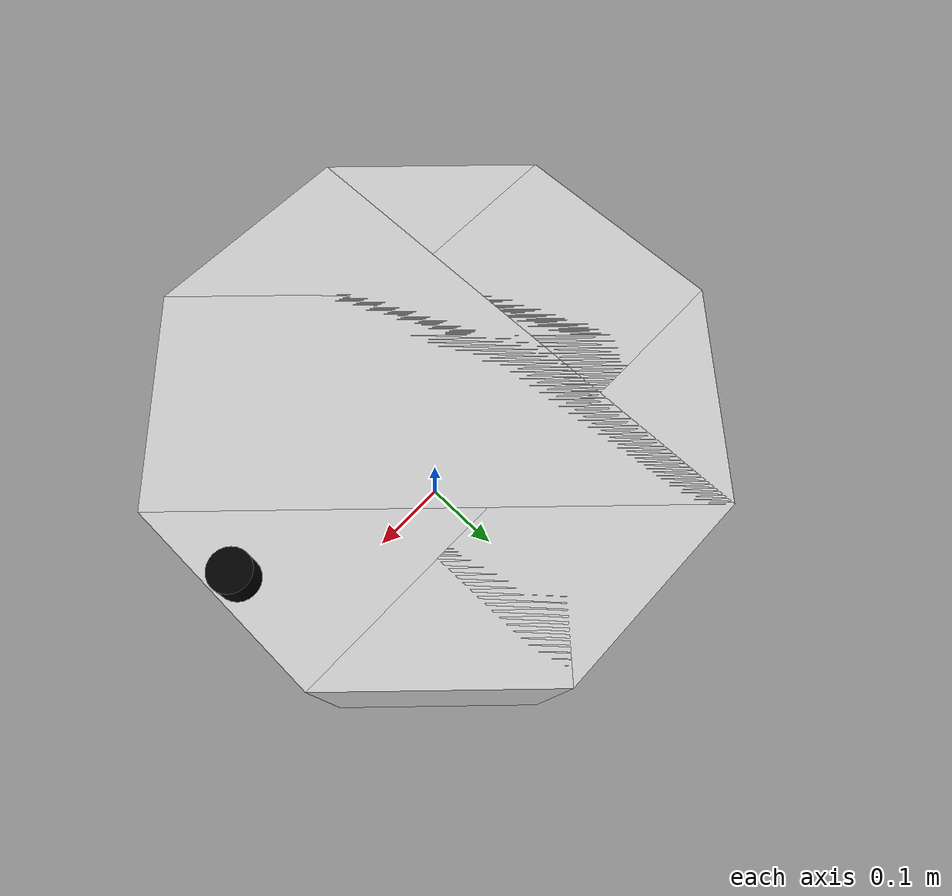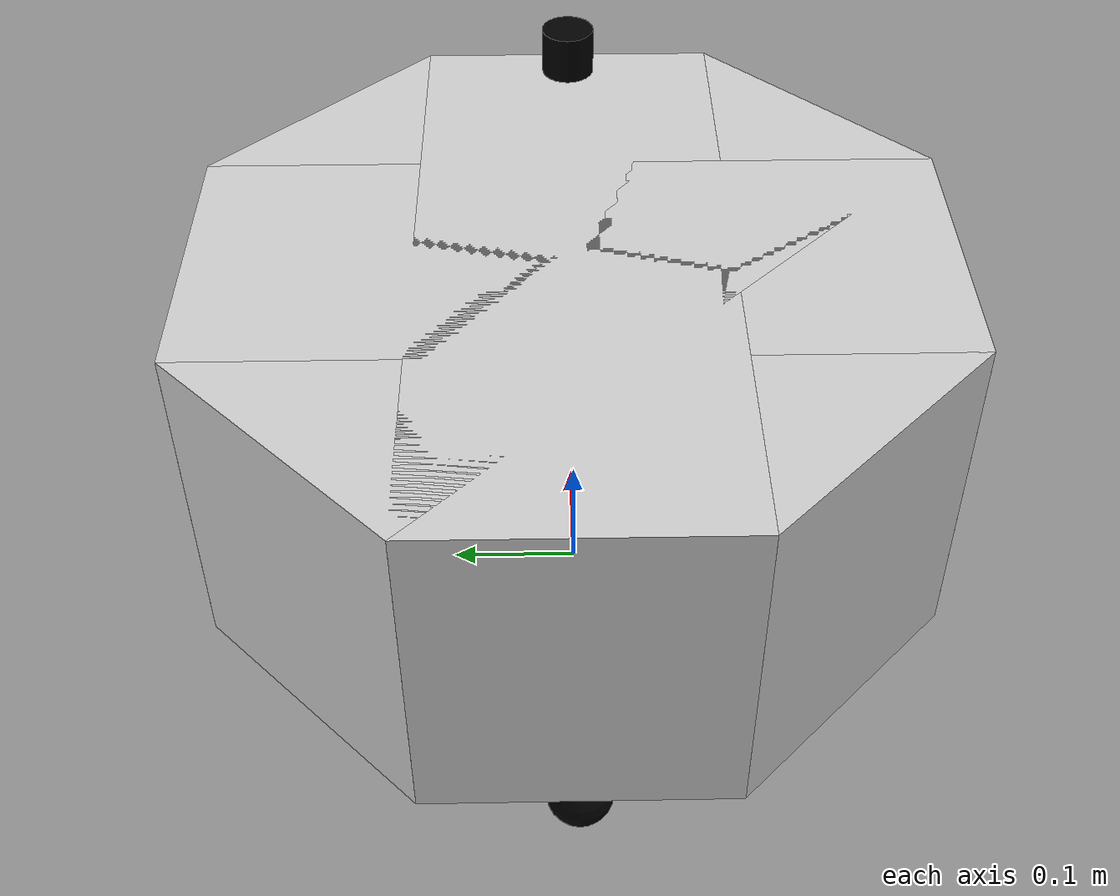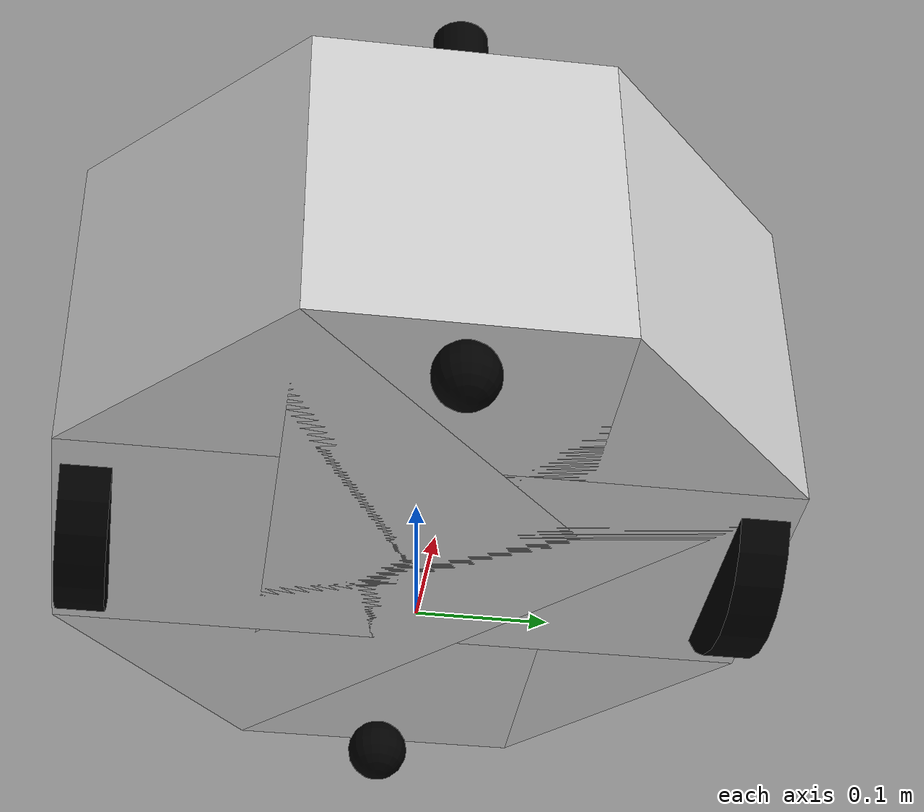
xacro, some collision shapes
<?xml version="1.0"?>
<robot name="charmie" xmlns:xacro="http://www.ros.org/wiki/xacro">

    <xacro:include filename="common_properties.xacro"/>
    <xacro:include filename="inertial_macros.xacro"/>
    <xacro:include filename="mobile_base.xacro"/>
    <xacro:include filename="mobile_base_gazebo.xacro"/>
    <xacro:include filename="lidar.xacro"/>

</robot>

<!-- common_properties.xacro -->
<robot xmlns:xacro="http://www.ros.org/wiki/xacro">

    <material name ="orange">
        <color rgba="1 0.3 0.1 1" />
    </material>

    <material name ="black">
        <color rgba="0 0 0 1" />
    </material>

    <material name ="light_grey">
        <color rgba="0.8 0.8 0.8 1" />
    </material>

    <material name ="grey">
        <color rgba="0.6 0.6 0.6 1" />
    </material>

    <material name ="dark_grey">
        <color rgba="0.25 0.25 0.25 1" />
    </material>

</robot>

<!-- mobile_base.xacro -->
<robot xmlns:xacro="http://www.ros.org/wiki/xacro">

    <xacro:property name="base_octagon_side" value="0.232" />
    <xacro:property name="base_length" value="0.56" />
    <xacro:property name="base_height" value="0.27" />

    <xacro:property name="base_floor_height" value="0.05" />

    <xacro:property name="wheel_radius" value="0.1" />
    <xacro:property name="wheel_length" value="0.038" />
    <xacro:property name="wheel_shift_from_base_length" value="0.025" />

    <!-- BASE LINK -->

    <link name="base_link">

        <visual>
            <geometry>
                <box size="${base_length} ${base_octagon_side} ${base_height}" />
            </geometry>
            <origin xyz="0 0 ${base_height/2}" rpy="0 0 0" />
            <material name="light_grey"/>
        </visual>
        <collision>
            <geometry>
                <box size="${base_length} ${base_octagon_side} ${base_height}" />
            </geometry>
            <origin xyz="0 0 ${base_height/2}" rpy="0 0 0" />
        </collision>
        <xacro:inertial_box mass="5.0" x="${base_length}" y="${base_octagon_side}" z="${base_height}" >
            <origin xyz="0 0 ${base_height/2}" rpy="0 0 0" />
        </xacro:inertial_box>

        <visual>
            <geometry>
                <box size="${base_length} ${base_octagon_side} ${base_height}" />
            </geometry>
            <origin xyz="0 0 ${base_height/2}" rpy="0 0 ${pi/2}" />
            <material name="light_grey"/>
        </visual>
        <collision>
            <geometry>
                <box size="${base_length} ${base_octagon_side} ${base_height}" />
            </geometry>
            <origin xyz="0 0 ${base_height/2}" rpy="0 0 ${pi/2}" />
        </collision>
        <xacro:inertial_box mass="5.0" x="${base_length}" y="${base_octagon_side}" z="${base_height}" >
            <origin xyz="0 0 ${base_height/2}" rpy="0 0 ${pi/2}" />
        </xacro:inertial_box>

        <visual>
            <geometry>
                <box size="${base_length} ${base_octagon_side} ${base_height}" />
            </geometry>
            <origin xyz="0 0 ${base_height/2}" rpy="0 0 ${pi/4}" />
            <material name="light_grey"/>
        </visual>
        <collision>
            <geometry>
                <box size="${base_length} ${base_octagon_side} ${base_height}" />
            </geometry>
            <origin xyz="0 0 ${base_height/2}" rpy="0 0 ${pi/4}" />
        </collision>
        <xacro:inertial_box mass="5.0" x="${base_length}" y="${base_octagon_side}" z="${base_height}" >
            <origin xyz="0 0 ${base_height/2}" rpy="0 0 ${pi/4}" />
        </xacro:inertial_box>

        <visual>
            <geometry>
                <box size="${base_length} ${base_octagon_side} ${base_height}" />
            </geometry>
            <origin xyz="0 0 ${base_height/2}" rpy="0 0 -${pi/4}" />
            <material name="light_grey"/>
        </visual>
        <collision>
            <geometry>
                <box size="${base_length} ${base_octagon_side} ${base_height}" />
            </geometry>
            <origin xyz="0 0 ${base_height/2}" rpy="0 0 -${pi/4}" />
        </collision>
        <xacro:inertial_box mass="5.0" x="${base_length}" y="${base_octagon_side}" z="${base_height}" >
            <origin xyz="0 0 ${base_height/2}" rpy="0 0 -${pi/4}" />
        </xacro:inertial_box>

    </link>

    <!-- BASE FOOTPRINT -->

    <joint name="base_footprint_joint" type="fixed">
        <parent link="base_footprint"/>
        <child link="base_link"/>
        <origin xyz="0 0 ${base_floor_height}" rpy="0 0 0"/>
    </joint>

    <link name="base_footprint">

    </link>

    <!-- WHEEL LINK FUNCTION -->

    <xacro:macro name="wheel_link" params="prefix">
        <link name="${prefix}_wheel_link">
            <visual>
                <geometry>
                    <cylinder radius="${wheel_radius}" length="${wheel_length}"/>
                </geometry>
                <origin xyz="0 0 0" rpy="${pi/2} 0 0"/>
                <material name="black"/>
            </visual>
            <collision>
                <geometry>
                    <cylinder radius="${wheel_radius}" length="${wheel_length}"/>
                </geometry>
                <origin xyz="0 0 0" rpy="${pi/2} 0 0"/>
            </collision>
            <xacro:inertial_cylinder mass="0.5" length="${wheel_length}" radius="${wheel_radius}" >
                <origin xyz="0 0 0" rpy="${pi/2} 0 0" />
            </xacro:inertial_cylinder>
        </link>
    </xacro:macro>

    <!-- RIGHT WHEEL -->

    <joint name="right_wheel_joint" type="continuous">
        <parent link="base_link"/>
        <child link="right_wheel_link"/>
        <origin xyz="0 ${-(base_length/2-wheel_shift_from_base_length)} ${wheel_radius-base_floor_height}"/>
        <axis xyz="0 1 0"/>
    </joint>

    <xacro:wheel_link prefix="right" />

    <!-- LEFT WHEEL -->

    <joint name="left_wheel_joint" type="continuous">
        <parent link="base_link"/>
        <child link="left_wheel_link"/>
        <origin xyz="0 ${+(base_length/2-wheel_shift_from_base_length)} ${wheel_radius-base_floor_height}"/>
        <axis xyz="0 1 0"/>
    </joint>

    <xacro:wheel_link prefix="left" />

    <!-- FRONT CASTER WHEEL -->

    <joint name="base_front_caster_wheel_joint" type="fixed">
        <parent link="base_link"/>
        <child link="front_caster_wheel_link"/>
        <origin xyz="${+(base_length/2-base_floor_height/2)} 0 ${-base_floor_height/2}"/>
    </joint>

    <link name="front_caster_wheel_link">
        <visual>
            <geometry>
                <sphere radius="${base_floor_height/2}" />
            </geometry>
            <origin xyz="0 0 0" rpy="0 0 0"/>
            <material name="black"/>
        </visual>
        <collision>
            <geometry>
                <sphere radius="${base_floor_height/2}" />
            </geometry>
            <origin xyz="0 0 0" rpy="0 0 0"/>
        </collision>
        <xacro:inertial_sphere mass="0.5" radius="${base_floor_height/2}" >
            <origin xyz="0 0 0" rpy="0 0 0" />
        </xacro:inertial_sphere>
    </link>

    <!-- BACK CASTER WHEEL -->

    <joint name="base_back_caster_wheel_joint" type="fixed">
        <parent link="base_link"/>
        <child link="back_caster_wheel_link"/>
        <origin xyz="${-(base_length/2-base_floor_height/2)} 0 ${-base_floor_height/2}"/>
    </joint>

    <link name="back_caster_wheel_link">
        <visual>
            <geometry>
                <sphere radius="${base_floor_height/2}" />
            </geometry>
            <origin xyz="0 0 0" rpy="0 0 0"/>
            <material name="black"/>
        </visual>
        <collision>
            <geometry>
                <sphere radius="${base_floor_height/2}" />
            </geometry>
            <origin xyz="0 0 0" rpy="0 0 0"/>
        </collision>
        <xacro:inertial_sphere mass="0.5" radius="${base_floor_height/2}" >
            <origin xyz="0 0 0" rpy="0 0 0" />
        </xacro:inertial_sphere>
    </link>

</robot>

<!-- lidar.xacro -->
<robot xmlns:xacro="http://www.ros.org/wiki/xacro" >

    <xacro:property name="lidar_height_from_base" value="0.3" />
    <xacro:property name="lidar_dist_from_base_limit" value="0.025" />

    <joint name="laser_joint" type="fixed">
        <parent link="base_link"/>
        <child link="lidar_frame"/>
        <origin xyz="${(base_length/2-lidar_dist_from_base_limit)} 0 ${lidar_height_from_base}" rpy="0 0 0"/>
    </joint>

    <link name="lidar_frame">
        <visual>
            <origin xyz="0 0 -0.062" rpy="${pi/2} 0 ${pi}"/>
            <geometry>
                <mesh filename="file://$(find charmie_description)/meshes/lidar.stl" scale="0.001 0.001 0.001"/>
            </geometry>
            <material name="black"/>
        </visual>
        <collision>
            <origin xyz="0 0 -0.011" rpy="0 0 0"/>
            <geometry>
                <cylinder radius="0.021" length="0.038"/>
            </geometry>
        </collision>
        <xacro:inertial_cylinder mass="0.1" length="0.038" radius="0.021"> <!-- ajustar -->
            <origin xyz="0 0 -0.011" rpy="0 0 0"/>
        </xacro:inertial_cylinder>
    </link>

    <!-- hokuyo -->
    <gazebo reference="lidar_frame">
        <material>Gazebo/Black</material>
        <sensor type="ray" name="head_hokuyo_sensor">
            <pose> 0 0 0 0 0 0 </pose>
            <visualize>true</visualize>
            <update_rate>10</update_rate>
            <ray>
                <scan>
                    <horizontal>
                        <samples>681</samples>
                        <min_angle>-2.092387973753402</min_angle>
                        <max_angle>2.092387973753402</max_angle>
                    </horizontal>
                </scan>
                <range>
                    <min>0.2</min>
                    <max>5.6</max>
                </range>
            </ray>
            <plugin name="laser_controller" filename="libgazebo_ros_ray_sensor.so">
                <ros>
                    <argument>~/out:=scan</argument>
                </ros>
                <output_type>sensor_msgs/LaserScan</output_type>
                <frame_name>lidar_frame</frame_name>
            </plugin>
        </sensor>
    </gazebo>

</robot>
